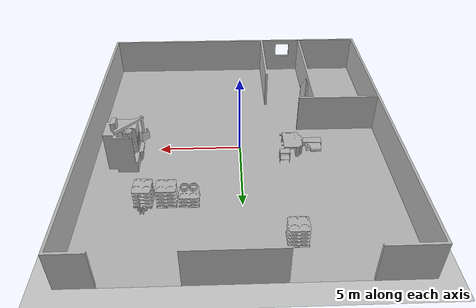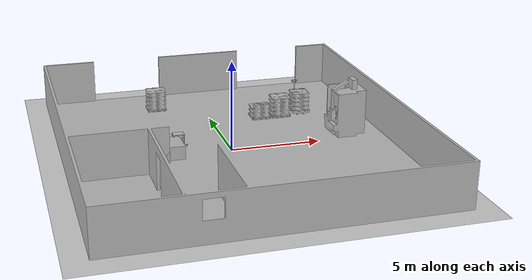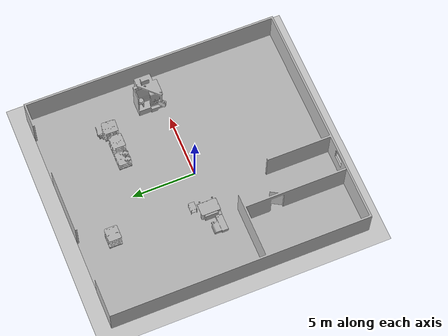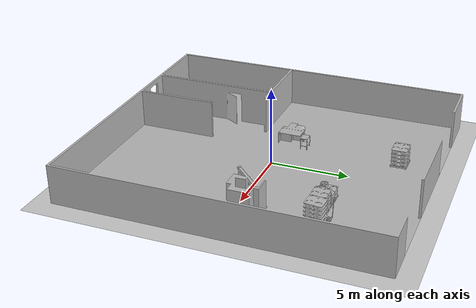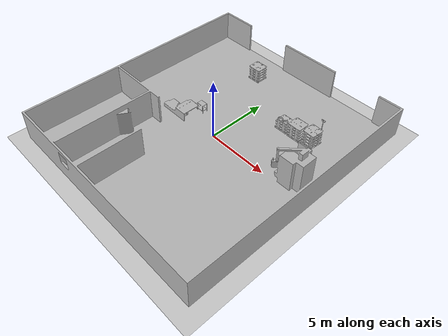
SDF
<sdf version="1.6">
 <world name="default">
  <light name="sun" type="directional">
   <pose>0 0 10 0 -0 0</pose>
   <diffuse>0.8 0.8 0.8 1</diffuse>
   <specular>0.2 0.2 0.2 1</specular>
   <attenuation>
    <range>1000</range>
    <constant>0.9</constant>
    <linear>0.01</linear>
    <quadratic>0.001</quadratic>
   </attenuation>
   <direction>-0.5 0.1 -0.9</direction>
  </light>
  <model name="ground_plane">
   <static>1</static>
   <link name="link">
    <collision name="collision">
     <geometry><plane><normal>0 0 1</normal><size>100 100</size></plane></geometry>
     <surface><friction><ode><mu>100</mu><mu2>50</mu2></ode></friction></surface>
    </collision>
    <visual name="visual">
     <cast_shadows>0</cast_shadows>
     <geometry><plane><normal>0 0 1</normal><size>100 100</size></plane></geometry>
     <material>
      <script><uri>file://media/materials/scripts/gazebo.material</uri><name>Gazebo/Grey</name></script>
     </material>
    </visual>
   </link>
  </model>
  <gravity>0 0 -9.8</gravity>
  <magnetic_field>6e-06 2.3e-05 -4.2e-05</magnetic_field>
  <atmosphere type="adiabatic"/>
  <physics name="default_physics" default="0" type="ode">
   <max_step_size>0.001</max_step_size>
   <real_time_factor>1</real_time_factor>
   <real_time_update_rate>1000</real_time_update_rate>
  </physics>
  <scene><ambient>0.4 0.4 0.4 1</ambient><background>0.7 0.7 0.7 1</background><shadows>1</shadows></scene>
  <spherical_coordinates>
   <surface_model>EARTH_WGS84</surface_model>
   <latitude_deg>0</latitude_deg>
   <longitude_deg>0</longitude_deg>
   <elevation>0</elevation>
   <heading_deg>0</heading_deg>
  </spherical_coordinates>
  <model name="floor_sketch">
   <static>1</static>
   <link name="link">
    <visual name="visual">
     <geometry><mesh><uri>model://floor_sketch/meshes/floor_sketch.obj</uri></mesh></geometry>
    </visual>
    <collision name="collision">
     <geometry><mesh><uri>model://floor_sketch/meshes/floor_sketch.obj</uri></mesh></geometry>
    </collision>
   </link>
  </model>
  <model name="2D Vision Measurement Machine">
   <static>1</static>
   <link name="link">
    <visual name="visual">
     <geometry>
      <mesh><uri>model://2D Vision Measurement Machine/meshes/2D_Vision_Measurement_Machine.obj</uri></mesh>
     </geometry>
    </visual>
    <collision name="collision">
     <geometry>
      <mesh><uri>model://2D Vision Measurement Machine/meshes/2D_Vision_Measurement_Machine.obj</uri></mesh>
     </geometry>
    </collision>
   </link>
   <pose>-2.7 0.2 0 1.5708 0 -1.5708</pose>
  </model>
  <model name="Adjustable Height Work Table">
   <static>1</static>
   <link name="link">
    <visual name="visual">
     <geometry>
      <mesh><uri>model://Adjustable Height Work Table/meshes/Adjustable_Height_Work_Table.obj</uri></mesh>
     </geometry>
    </visual>
    <collision name="collision">
     <geometry>
      <mesh><uri>model://Adjustable Height Work Table/meshes/Adjustable_Height_Work_Table.obj</uri></mesh>
     </geometry>
    </collision>
   </link>
   <pose>-2.7 1.3 0.762 1.5708 -0 0</pose>
  </model>
  <model name="OKUMA V60R">
   <static>1</static>
   <link name="link">
    <visual name="visual">
     <geometry><mesh><uri>model://OKUMA V60R/meshes/OKUMA_V60R.obj</uri></mesh></geometry>
    </visual>
    <collision name="collision">
     <geometry><mesh><uri>model://OKUMA V60R/meshes/OKUMA_V60R.obj</uri></mesh></geometry>
    </collision>
   </link>
   <pose>6.8 1.65 1.07315 0 0 -1.5708</pose>
  </model>
  <model name="Hand_truck_pallet_forged_wheels">
   <static>1</static>
   <link name="link">
    <visual name="visual">
     <geometry>
      <mesh><uri>model://Hand_truck_pallet_forged_wheels/meshes/Hand_truck_pallet_forged_wheels.obj</uri></mesh>
     </geometry>
    </visual>
    <collision name="collision">
     <geometry>
      <mesh><uri>model://Hand_truck_pallet_forged_wheels/meshes/Hand_truck_pallet_forged_wheels.obj</uri></mesh>
     </geometry>
    </collision>
   </link>
   <pose>5.5 5.5 0.1003 1.6 -0 -3.14033</pose>
  </model>
  <model name="pallet_forged_wheels_newaxis">
   <static>1</static>
   <link name="link">
    <visual name="visual">
     <geometry>
      <mesh><uri>model://pallet_forged_wheels_newaxis/meshes/pallet_forged_wheels_newaxis.obj</uri></mesh>
     </geometry>
    </visual>
    <collision name="collision">
     <geometry>
      <mesh><uri>model://pallet_forged_wheels_newaxis/meshes/pallet_forged_wheels_newaxis.obj</uri></mesh>
     </geometry>
    </collision>
   </link>
   <pose>4.19583 4.59456 0 0 -0 0</pose>
  </model>
  <model name="pallet_forged_wheels_newaxis_semi">
   <static>1</static>
   <link name="link">
    <visual name="visual">
     <geometry>
      <mesh><uri>model://pallet_forged_wheels_newaxis_semi/meshes/pallet_forged_wheels_newaxis_semi.obj</uri></mesh>
     </geometry>
    </visual>
    <collision name="collision">
     <geometry>
      <mesh><uri>model://pallet_forged_wheels_newaxis_semi/meshes/pallet_forged_wheels_newaxis_semi.obj</uri></mesh>
     </geometry>
    </collision>
   </link>
   <pose>2.96608 4.60952 0 0 -0 0</pose>
  </model>
  <model name="pallet_forged_wheels_newaxis_0">
   <static>1</static>
   <link name="link">
    <visual name="visual">
     <geometry>
      <mesh><uri>model://pallet_forged_wheels_newaxis/meshes/pallet_forged_wheels_newaxis.obj</uri></mesh>
     </geometry>
    </visual>
    <collision name="collision">
     <geometry>
      <mesh><uri>model://pallet_forged_wheels_newaxis/meshes/pallet_forged_wheels_newaxis.obj</uri></mesh>
     </geometry>
    </collision>
   </link>
   <pose>-2.70935 7.57018 0 0 -0 0</pose>
  </model>
 </world>
</sdf>
